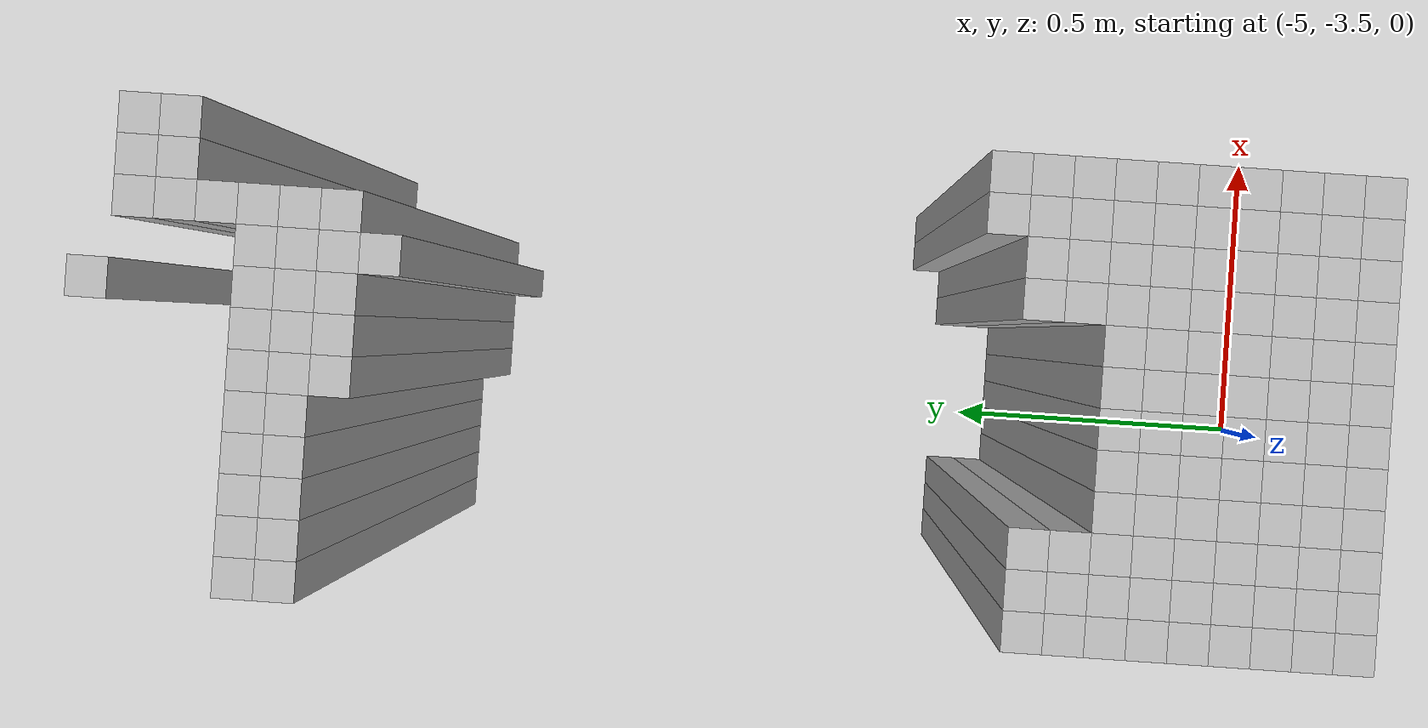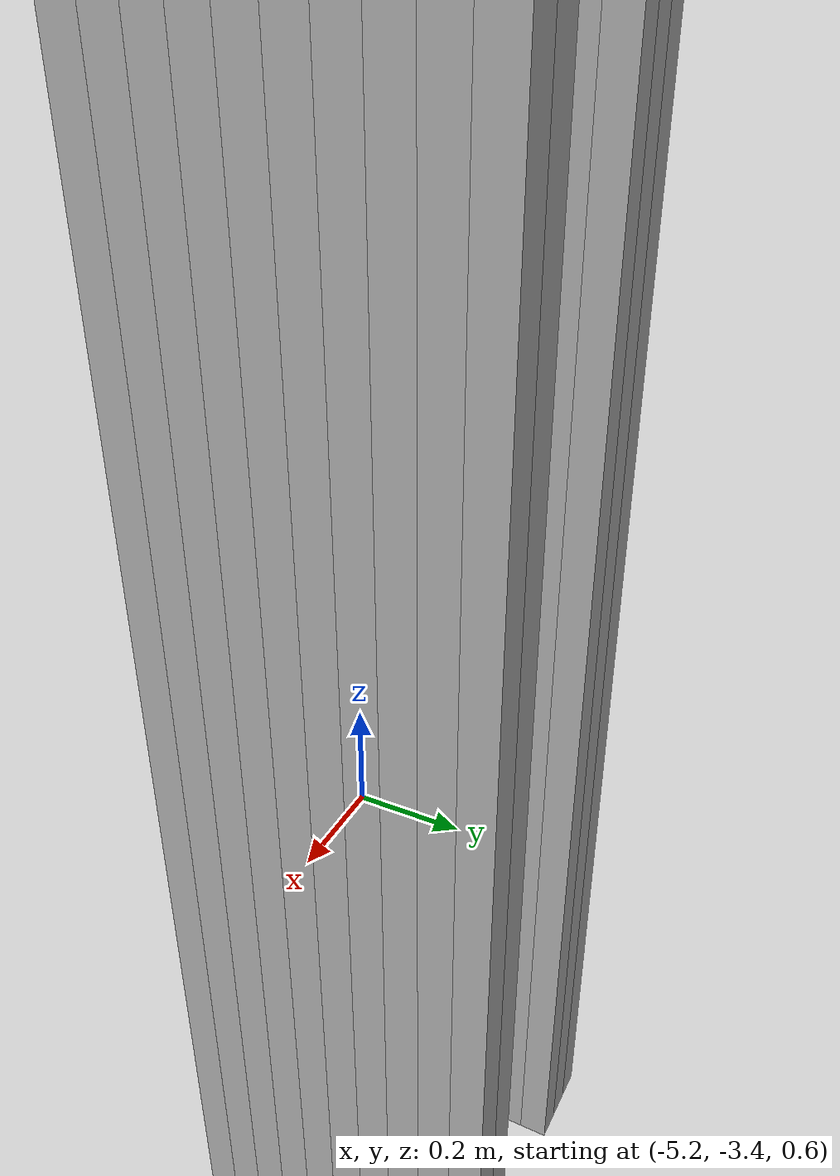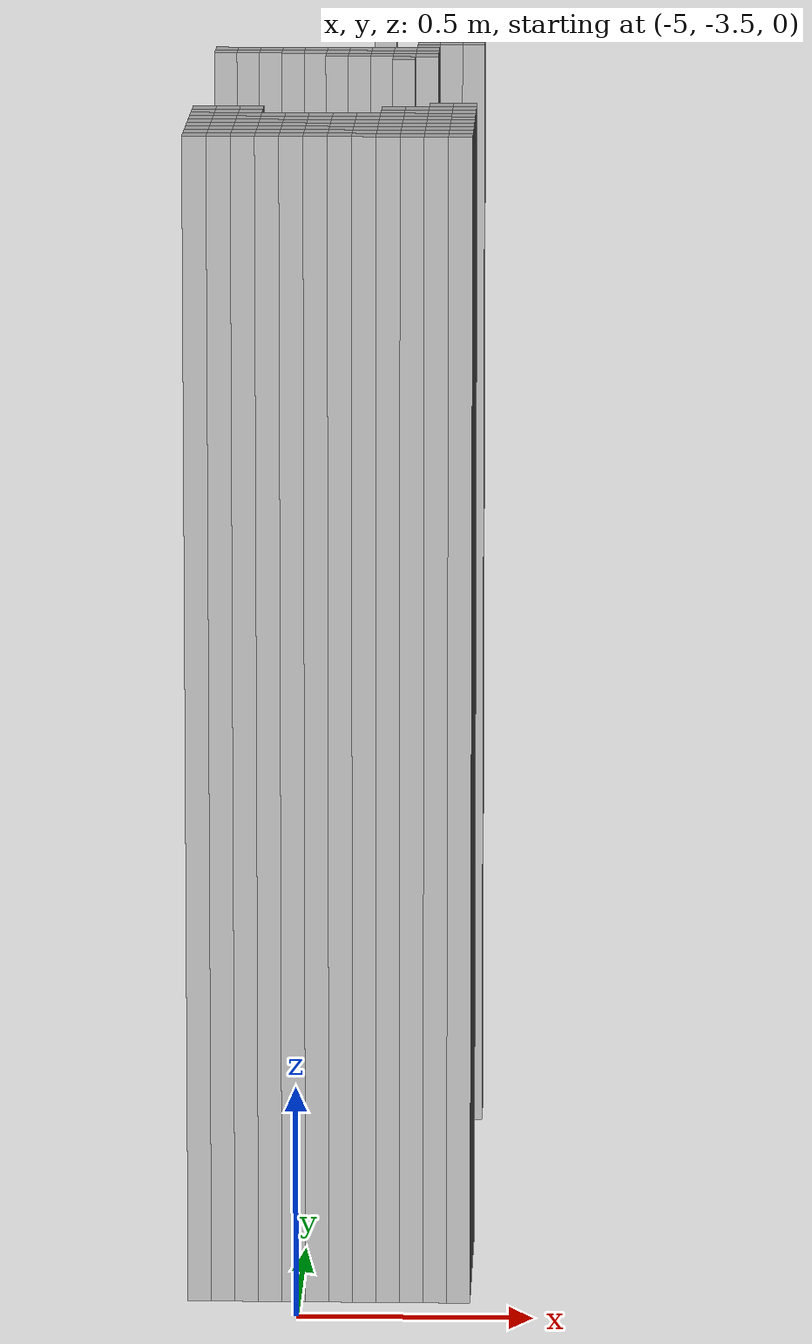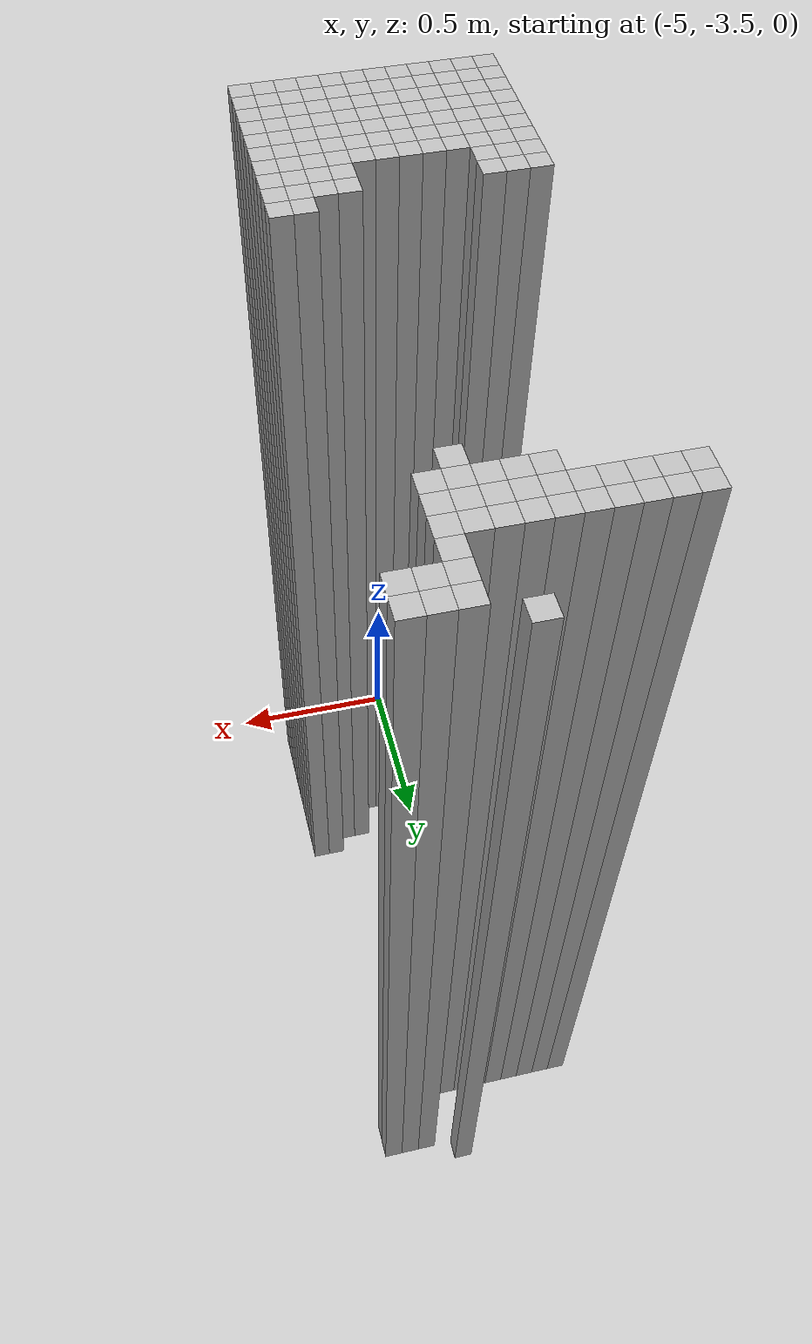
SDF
<sdf version="1.9">
 <world name="map_world">
  <model name="wall_126_190">
   <static>true</static>
   <pose>-4.861 -1.820 1.250 0 0 0</pose>
   <link name="link">
    <collision name="collision"><geometry><box><size>0.050 0.050 2.500</size></box></geometry></collision>
    <visual name="visual"><geometry><box><size>0.050 0.050 2.500</size></box></geometry></visual>
   </link>
  </model>
  <model name="wall_128_191">
   <static>true</static>
   <pose>-4.761 -1.870 1.250 0 0 0</pose>
   <link name="link">
    <collision name="collision"><geometry><box><size>0.050 0.050 2.500</size></box></geometry></collision>
    <visual name="visual"><geometry><box><size>0.050 0.050 2.500</size></box></geometry></visual>
   </link>
  </model>
  <model name="wall_129_191">
   <static>true</static>
   <pose>-4.711 -1.870 1.250 0 0 0</pose>
   <link name="link">
    <collision name="collision"><geometry><box><size>0.050 0.050 2.500</size></box></geometry></collision>
    <visual name="visual"><geometry><box><size>0.050 0.050 2.500</size></box></geometry></visual>
   </link>
  </model>
  <model name="wall_130_191">
   <static>true</static>
   <pose>-4.661 -1.870 1.250 0 0 0</pose>
   <link name="link">
    <collision name="collision"><geometry><box><size>0.050 0.050 2.500</size></box></geometry></collision>
    <visual name="visual"><geometry><box><size>0.050 0.050 2.500</size></box></geometry></visual>
   </link>
  </model>
  <model name="wall_128_192">
   <static>true</static>
   <pose>-4.761 -1.920 1.250 0 0 0</pose>
   <link name="link">
    <collision name="collision"><geometry><box><size>0.050 0.050 2.500</size></box></geometry></collision>
    <visual name="visual"><geometry><box><size>0.050 0.050 2.500</size></box></geometry></visual>
   </link>
  </model>
  <model name="wall_129_192">
   <static>true</static>
   <pose>-4.711 -1.920 1.250 0 0 0</pose>
   <link name="link">
    <collision name="collision"><geometry><box><size>0.050 0.050 2.500</size></box></geometry></collision>
    <visual name="visual"><geometry><box><size>0.050 0.050 2.500</size></box></geometry></visual>
   </link>
  </model>
  <model name="wall_130_192">
   <static>true</static>
   <pose>-4.661 -1.920 1.250 0 0 0</pose>
   <link name="link">
    <collision name="collision"><geometry><box><size>0.050 0.050 2.500</size></box></geometry></collision>
    <visual name="visual"><geometry><box><size>0.050 0.050 2.500</size></box></geometry></visual>
   </link>
  </model>
  <model name="wall_128_193">
   <static>true</static>
   <pose>-4.761 -1.970 1.250 0 0 0</pose>
   <link name="link">
    <collision name="collision"><geometry><box><size>0.050 0.050 2.500</size></box></geometry></collision>
    <visual name="visual"><geometry><box><size>0.050 0.050 2.500</size></box></geometry></visual>
   </link>
  </model>
  <model name="wall_119_194">
   <static>true</static>
   <pose>-5.211 -2.020 1.250 0 0 0</pose>
   <link name="link">
    <collision name="collision"><geometry><box><size>0.050 0.050 2.500</size></box></geometry></collision>
    <visual name="visual"><geometry><box><size>0.050 0.050 2.500</size></box></geometry></visual>
   </link>
  </model>
  <model name="wall_120_194">
   <static>true</static>
   <pose>-5.161 -2.020 1.250 0 0 0</pose>
   <link name="link">
    <collision name="collision"><geometry><box><size>0.050 0.050 2.500</size></box></geometry></collision>
    <visual name="visual"><geometry><box><size>0.050 0.050 2.500</size></box></geometry></visual>
   </link>
  </model>
  <model name="wall_121_194">
   <static>true</static>
   <pose>-5.111 -2.020 1.250 0 0 0</pose>
   <link name="link">
    <collision name="collision"><geometry><box><size>0.050 0.050 2.500</size></box></geometry></collision>
    <visual name="visual"><geometry><box><size>0.050 0.050 2.500</size></box></geometry></visual>
   </link>
  </model>
  <model name="wall_122_194">
   <static>true</static>
   <pose>-5.061 -2.020 1.250 0 0 0</pose>
   <link name="link">
    <collision name="collision"><geometry><box><size>0.050 0.050 2.500</size></box></geometry></collision>
    <visual name="visual"><geometry><box><size>0.050 0.050 2.500</size></box></geometry></visual>
   </link>
  </model>
  <model name="wall_123_194">
   <static>true</static>
   <pose>-5.011 -2.020 1.250 0 0 0</pose>
   <link name="link">
    <collision name="collision"><geometry><box><size>0.050 0.050 2.500</size></box></geometry></collision>
    <visual name="visual"><geometry><box><size>0.050 0.050 2.500</size></box></geometry></visual>
   </link>
  </model>
  <model name="wall_124_194">
   <static>true</static>
   <pose>-4.961 -2.020 1.250 0 0 0</pose>
   <link name="link">
    <collision name="collision"><geometry><box><size>0.050 0.050 2.500</size></box></geometry></collision>
    <visual name="visual"><geometry><box><size>0.050 0.050 2.500</size></box></geometry></visual>
   </link>
  </model>
  <model name="wall_125_194">
   <static>true</static>
   <pose>-4.911 -2.020 1.250 0 0 0</pose>
   <link name="link">
    <collision name="collision"><geometry><box><size>0.050 0.050 2.500</size></box></geometry></collision>
    <visual name="visual"><geometry><box><size>0.050 0.050 2.500</size></box></geometry></visual>
   </link>
  </model>
  <model name="wall_126_194">
   <static>true</static>
   <pose>-4.861 -2.020 1.250 0 0 0</pose>
   <link name="link">
    <collision name="collision"><geometry><box><size>0.050 0.050 2.500</size></box></geometry></collision>
    <visual name="visual"><geometry><box><size>0.050 0.050 2.500</size></box></geometry></visual>
   </link>
  </model>
  <model name="wall_127_194">
   <static>true</static>
   <pose>-4.811 -2.020 1.250 0 0 0</pose>
   <link name="link">
    <collision name="collision"><geometry><box><size>0.050 0.050 2.500</size></box></geometry></collision>
    <visual name="visual"><geometry><box><size>0.050 0.050 2.500</size></box></geometry></visual>
   </link>
  </model>
  <model name="wall_128_194">
   <static>true</static>
   <pose>-4.761 -2.020 1.250 0 0 0</pose>
   <link name="link">
    <collision name="collision"><geometry><box><size>0.050 0.050 2.500</size></box></geometry></collision>
    <visual name="visual"><geometry><box><size>0.050 0.050 2.500</size></box></geometry></visual>
   </link>
  </model>
  <model name="wall_119_195">
   <static>true</static>
   <pose>-5.211 -2.070 1.250 0 0 0</pose>
   <link name="link">
    <collision name="collision"><geometry><box><size>0.050 0.050 2.500</size></box></geometry></collision>
    <visual name="visual"><geometry><box><size>0.050 0.050 2.500</size></box></geometry></visual>
   </link>
  </model>
  <model name="wall_120_195">
   <static>true</static>
   <pose>-5.161 -2.070 1.250 0 0 0</pose>
   <link name="link">
    <collision name="collision"><geometry><box><size>0.050 0.050 2.500</size></box></geometry></collision>
    <visual name="visual"><geometry><box><size>0.050 0.050 2.500</size></box></geometry></visual>
   </link>
  </model>
  <model name="wall_121_195">
   <static>true</static>
   <pose>-5.111 -2.070 1.250 0 0 0</pose>
   <link name="link">
    <collision name="collision"><geometry><box><size>0.050 0.050 2.500</size></box></geometry></collision>
    <visual name="visual"><geometry><box><size>0.050 0.050 2.500</size></box></geometry></visual>
   </link>
  </model>
  <model name="wall_122_195">
   <static>true</static>
   <pose>-5.061 -2.070 1.250 0 0 0</pose>
   <link name="link">
    <collision name="collision"><geometry><box><size>0.050 0.050 2.500</size></box></geometry></collision>
    <visual name="visual"><geometry><box><size>0.050 0.050 2.500</size></box></geometry></visual>
   </link>
  </model>
  <model name="wall_123_195">
   <static>true</static>
   <pose>-5.011 -2.070 1.250 0 0 0</pose>
   <link name="link">
    <collision name="collision"><geometry><box><size>0.050 0.050 2.500</size></box></geometry></collision>
    <visual name="visual"><geometry><box><size>0.050 0.050 2.500</size></box></geometry></visual>
   </link>
  </model>
  <model name="wall_124_195">
   <static>true</static>
   <pose>-4.961 -2.070 1.250 0 0 0</pose>
   <link name="link">
    <collision name="collision"><geometry><box><size>0.050 0.050 2.500</size></box></geometry></collision>
    <visual name="visual"><geometry><box><size>0.050 0.050 2.500</size></box></geometry></visual>
   </link>
  </model>
  <model name="wall_125_195">
   <static>true</static>
   <pose>-4.911 -2.070 1.250 0 0 0</pose>
   <link name="link">
    <collision name="collision"><geometry><box><size>0.050 0.050 2.500</size></box></geometry></collision>
    <visual name="visual"><geometry><box><size>0.050 0.050 2.500</size></box></geometry></visual>
   </link>
  </model>
  <model name="wall_126_195">
   <static>true</static>
   <pose>-4.861 -2.070 1.250 0 0 0</pose>
   <link name="link">
    <collision name="collision"><geometry><box><size>0.050 0.050 2.500</size></box></geometry></collision>
    <visual name="visual"><geometry><box><size>0.050 0.050 2.500</size></box></geometry></visual>
   </link>
  </model>
  <model name="wall_127_195">
   <static>true</static>
   <pose>-4.811 -2.070 1.250 0 0 0</pose>
   <link name="link">
    <collision name="collision"><geometry><box><size>0.050 0.050 2.500</size></box></geometry></collision>
    <visual name="visual"><geometry><box><size>0.050 0.050 2.500</size></box></geometry></visual>
   </link>
  </model>
  <model name="wall_128_195">
   <static>true</static>
   <pose>-4.761 -2.070 1.250 0 0 0</pose>
   <link name="link">
    <collision name="collision"><geometry><box><size>0.050 0.050 2.500</size></box></geometry></collision>
    <visual name="visual"><geometry><box><size>0.050 0.050 2.500</size></box></geometry></visual>
   </link>
  </model>
  <model name="wall_124_196">
   <static>true</static>
   <pose>-4.961 -2.120 1.250 0 0 0</pose>
   <link name="link">
    <collision name="collision"><geometry><box><size>0.050 0.050 2.500</size></box></geometry></collision>
    <visual name="visual"><geometry><box><size>0.050 0.050 2.500</size></box></geometry></visual>
   </link>
  </model>
  <model name="wall_125_196">
   <static>true</static>
   <pose>-4.911 -2.120 1.250 0 0 0</pose>
   <link name="link">
    <collision name="collision"><geometry><box><size>0.050 0.050 2.500</size></box></geometry></collision>
    <visual name="visual"><geometry><box><size>0.050 0.050 2.500</size></box></geometry></visual>
   </link>
  </model>
  <model name="wall_126_196">
   <static>true</static>
   <pose>-4.861 -2.120 1.250 0 0 0</pose>
   <link name="link">
    <collision name="collision"><geometry><box><size>0.050 0.050 2.500</size></box></geometry></collision>
    <visual name="visual"><geometry><box><size>0.050 0.050 2.500</size></box></geometry></visual>
   </link>
  </model>
  <model name="wall_127_196">
   <static>true</static>
   <pose>-4.811 -2.120 1.250 0 0 0</pose>
   <link name="link">
    <collision name="collision"><geometry><box><size>0.050 0.050 2.500</size></box></geometry></collision>
    <visual name="visual"><geometry><box><size>0.050 0.050 2.500</size></box></geometry></visual>
   </link>
  </model>
  <model name="wall_128_196">
   <static>true</static>
   <pose>-4.761 -2.120 1.250 0 0 0</pose>
   <link name="link">
    <collision name="collision"><geometry><box><size>0.050 0.050 2.500</size></box></geometry></collision>
    <visual name="visual"><geometry><box><size>0.050 0.050 2.500</size></box></geometry></visual>
   </link>
  </model>
  <model name="wall_127_197">
   <static>true</static>
   <pose>-4.811 -2.170 1.250 0 0 0</pose>
   <link name="link">
    <collision name="collision"><geometry><box><size>0.050 0.050 2.500</size></box></geometry></collision>
    <visual name="visual"><geometry><box><size>0.050 0.050 2.500</size></box></geometry></visual>
   </link>
  </model>
  <model name="wall_129_212">
   <static>true</static>
   <pose>-4.711 -2.920 1.250 0 0 0</pose>
   <link name="link">
    <collision name="collision"><geometry><box><size>0.050 0.050 2.500</size></box></geometry></collision>
    <visual name="visual"><geometry><box><size>0.050 0.050 2.500</size></box></geometry></visual>
   </link>
  </model>
  <model name="wall_130_212">
   <static>true</static>
   <pose>-4.661 -2.920 1.250 0 0 0</pose>
   <link name="link">
    <collision name="collision"><geometry><box><size>0.050 0.050 2.500</size></box></geometry></collision>
    <visual name="visual"><geometry><box><size>0.050 0.050 2.500</size></box></geometry></visual>
   </link>
  </model>
  <model name="wall_119_213">
   <static>true</static>
   <pose>-5.211 -2.970 1.250 0 0 0</pose>
   <link name="link">
    <collision name="collision"><geometry><box><size>0.050 0.050 2.500</size></box></geometry></collision>
    <visual name="visual"><geometry><box><size>0.050 0.050 2.500</size></box></geometry></visual>
   </link>
  </model>
  <model name="wall_120_213">
   <static>true</static>
   <pose>-5.161 -2.970 1.250 0 0 0</pose>
   <link name="link">
    <collision name="collision"><geometry><box><size>0.050 0.050 2.500</size></box></geometry></collision>
    <visual name="visual"><geometry><box><size>0.050 0.050 2.500</size></box></geometry></visual>
   </link>
  </model>
  <model name="wall_121_213">
   <static>true</static>
   <pose>-5.111 -2.970 1.250 0 0 0</pose>
   <link name="link">
    <collision name="collision"><geometry><box><size>0.050 0.050 2.500</size></box></geometry></collision>
    <visual name="visual"><geometry><box><size>0.050 0.050 2.500</size></box></geometry></visual>
   </link>
  </model>
  <model name="wall_127_213">
   <static>true</static>
   <pose>-4.811 -2.970 1.250 0 0 0</pose>
   <link name="link">
    <collision name="collision"><geometry><box><size>0.050 0.050 2.500</size></box></geometry></collision>
    <visual name="visual"><geometry><box><size>0.050 0.050 2.500</size></box></geometry></visual>
   </link>
  </model>
  <model name="wall_128_213">
   <static>true</static>
   <pose>-4.761 -2.970 1.250 0 0 0</pose>
   <link name="link">
    <collision name="collision"><geometry><box><size>0.050 0.050 2.500</size></box></geometry></collision>
    <visual name="visual"><geometry><box><size>0.050 0.050 2.500</size></box></geometry></visual>
   </link>
  </model>
  <model name="wall_129_213">
   <static>true</static>
   <pose>-4.711 -2.970 1.250 0 0 0</pose>
   <link name="link">
    <collision name="collision"><geometry><box><size>0.050 0.050 2.500</size></box></geometry></collision>
    <visual name="visual"><geometry><box><size>0.050 0.050 2.500</size></box></geometry></visual>
   </link>
  </model>
  <model name="wall_130_213">
   <static>true</static>
   <pose>-4.661 -2.970 1.250 0 0 0</pose>
   <link name="link">
    <collision name="collision"><geometry><box><size>0.050 0.050 2.500</size></box></geometry></collision>
    <visual name="visual"><geometry><box><size>0.050 0.050 2.500</size></box></geometry></visual>
   </link>
  </model>
  <model name="wall_119_214">
   <static>true</static>
   <pose>-5.211 -3.020 1.250 0 0 0</pose>
   <link name="link">
    <collision name="collision"><geometry><box><size>0.050 0.050 2.500</size></box></geometry></collision>
    <visual name="visual"><geometry><box><size>0.050 0.050 2.500</size></box></geometry></visual>
   </link>
  </model>
  <model name="wall_120_214">
   <static>true</static>
   <pose>-5.161 -3.020 1.250 0 0 0</pose>
   <link name="link">
    <collision name="collision"><geometry><box><size>0.050 0.050 2.500</size></box></geometry></collision>
    <visual name="visual"><geometry><box><size>0.050 0.050 2.500</size></box></geometry></visual>
   </link>
  </model>
  <model name="wall_121_214">
   <static>true</static>
   <pose>-5.111 -3.020 1.250 0 0 0</pose>
   <link name="link">
    <collision name="collision"><geometry><box><size>0.050 0.050 2.500</size></box></geometry></collision>
    <visual name="visual"><geometry><box><size>0.050 0.050 2.500</size></box></geometry></visual>
   </link>
  </model>
  <model name="wall_127_214">
   <static>true</static>
   <pose>-4.811 -3.020 1.250 0 0 0</pose>
   <link name="link">
    <collision name="collision"><geometry><box><size>0.050 0.050 2.500</size></box></geometry></collision>
    <visual name="visual"><geometry><box><size>0.050 0.050 2.500</size></box></geometry></visual>
   </link>
  </model>
  <model name="wall_128_214">
   <static>true</static>
   <pose>-4.761 -3.020 1.250 0 0 0</pose>
   <link name="link">
    <collision name="collision"><geometry><box><size>0.050 0.050 2.500</size></box></geometry></collision>
    <visual name="visual"><geometry><box><size>0.050 0.050 2.500</size></box></geometry></visual>
   </link>
  </model>
  <model name="wall_129_214">
   <static>true</static>
   <pose>-4.711 -3.020 1.250 0 0 0</pose>
   <link name="link">
    <collision name="collision"><geometry><box><size>0.050 0.050 2.500</size></box></geometry></collision>
    <visual name="visual"><geometry><box><size>0.050 0.050 2.500</size></box></geometry></visual>
   </link>
  </model>
  <model name="wall_130_214">
   <static>true</static>
   <pose>-4.661 -3.020 1.250 0 0 0</pose>
   <link name="link">
    <collision name="collision"><geometry><box><size>0.050 0.050 2.500</size></box></geometry></collision>
    <visual name="visual"><geometry><box><size>0.050 0.050 2.500</size></box></geometry></visual>
   </link>
  </model>
  <model name="wall_119_215">
   <static>true</static>
   <pose>-5.211 -3.070 1.250 0 0 0</pose>
   <link name="link">
    <collision name="collision"><geometry><box><size>0.050 0.050 2.500</size></box></geometry></collision>
    <visual name="visual"><geometry><box><size>0.050 0.050 2.500</size></box></geometry></visual>
   </link>
  </model>
  <model name="wall_120_215">
   <static>true</static>
   <pose>-5.161 -3.070 1.250 0 0 0</pose>
   <link name="link">
    <collision name="collision"><geometry><box><size>0.050 0.050 2.500</size></box></geometry></collision>
    <visual name="visual"><geometry><box><size>0.050 0.050 2.500</size></box></geometry></visual>
   </link>
  </model>
  <model name="wall_121_215">
   <static>true</static>
   <pose>-5.111 -3.070 1.250 0 0 0</pose>
   <link name="link">
    <collision name="collision"><geometry><box><size>0.050 0.050 2.500</size></box></geometry></collision>
    <visual name="visual"><geometry><box><size>0.050 0.050 2.500</size></box></geometry></visual>
   </link>
  </model>
  <model name="wall_122_215">
   <static>true</static>
   <pose>-5.061 -3.070 1.250 0 0 0</pose>
   <link name="link">
    <collision name="collision"><geometry><box><size>0.050 0.050 2.500</size></box></geometry></collision>
    <visual name="visual"><geometry><box><size>0.050 0.050 2.500</size></box></geometry></visual>
   </link>
  </model>
  <model name="wall_123_215">
   <static>true</static>
   <pose>-5.011 -3.070 1.250 0 0 0</pose>
   <link name="link">
    <collision name="collision"><geometry><box><size>0.050 0.050 2.500</size></box></geometry></collision>
    <visual name="visual"><geometry><box><size>0.050 0.050 2.500</size></box></geometry></visual>
   </link>
  </model>
  <model name="wall_124_215">
   <static>true</static>
   <pose>-4.961 -3.070 1.250 0 0 0</pose>
   <link name="link">
    <collision name="collision"><geometry><box><size>0.050 0.050 2.500</size></box></geometry></collision>
    <visual name="visual"><geometry><box><size>0.050 0.050 2.500</size></box></geometry></visual>
   </link>
  </model>
  <model name="wall_125_215">
   <static>true</static>
   <pose>-4.911 -3.070 1.250 0 0 0</pose>
   <link name="link">
    <collision name="collision"><geometry><box><size>0.050 0.050 2.500</size></box></geometry></collision>
    <visual name="visual"><geometry><box><size>0.050 0.050 2.500</size></box></geometry></visual>
   </link>
  </model>
  <model name="wall_126_215">
   <static>true</static>
   <pose>-4.861 -3.070 1.250 0 0 0</pose>
   <link name="link">
    <collision name="collision"><geometry><box><size>0.050 0.050 2.500</size></box></geometry></collision>
    <visual name="visual"><geometry><box><size>0.050 0.050 2.500</size></box></geometry></visual>
   </link>
  </model>
  <model name="wall_127_215">
   <static>true</static>
   <pose>-4.811 -3.070 1.250 0 0 0</pose>
   <link name="link">
    <collision name="collision"><geometry><box><size>0.050 0.050 2.500</size></box></geometry></collision>
    <visual name="visual"><geometry><box><size>0.050 0.050 2.500</size></box></geometry></visual>
   </link>
  </model>
  <model name="wall_128_215">
   <static>true</static>
   <pose>-4.761 -3.070 1.250 0 0 0</pose>
   <link name="link">
    <collision name="collision"><geometry><box><size>0.050 0.050 2.500</size></box></geometry></collision>
    <visual name="visual"><geometry><box><size>0.050 0.050 2.500</size></box></geometry></visual>
   </link>
  </model>
  <model name="wall_129_215">
   <static>true</static>
   <pose>-4.711 -3.070 1.250 0 0 0</pose>
   <link name="link">
    <collision name="collision"><geometry><box><size>0.050 0.050 2.500</size></box></geometry></collision>
    <visual name="visual"><geometry><box><size>0.050 0.050 2.500</size></box></geometry></visual>
   </link>
  </model>
  <model name="wall_130_215">
   <static>true</static>
   <pose>-4.661 -3.070 1.250 0 0 0</pose>
   <link name="link">
    <collision name="collision"><geometry><box><size>0.050 0.050 2.500</size></box></geometry></collision>
    <visual name="visual"><geometry><box><size>0.050 0.050 2.500</size></box></geometry></visual>
   </link>
  </model>
  <model name="wall_119_216">
   <static>true</static>
   <pose>-5.211 -3.120 1.250 0 0 0</pose>
   <link name="link">
    <collision name="collision"><geometry><box><size>0.050 0.050 2.500</size></box></geometry></collision>
    <visual name="visual"><geometry><box><size>0.050 0.050 2.500</size></box></geometry></visual>
   </link>
  </model>
  <model name="wall_120_216">
   <static>true</static>
   <pose>-5.161 -3.120 1.250 0 0 0</pose>
   <link name="link">
    <collision name="collision"><geometry><box><size>0.050 0.050 2.500</size></box></geometry></collision>
    <visual name="visual"><geometry><box><size>0.050 0.050 2.500</size></box></geometry></visual>
   </link>
  </model>
  <model name="wall_121_216">
   <static>true</static>
   <pose>-5.111 -3.120 1.250 0 0 0</pose>
   <link name="link">
    <collision name="collision"><geometry><box><size>0.050 0.050 2.500</size></box></geometry></collision>
    <visual name="visual"><geometry><box><size>0.050 0.050 2.500</size></box></geometry></visual>
   </link>
  </model>
  <model name="wall_122_216">
   <static>true</static>
   <pose>-5.061 -3.120 1.250 0 0 0</pose>
   <link name="link">
    <collision name="collision"><geometry><box><size>0.050 0.050 2.500</size></box></geometry></collision>
    <visual name="visual"><geometry><box><size>0.050 0.050 2.500</size></box></geometry></visual>
   </link>
  </model>
  <model name="wall_123_216">
   <static>true</static>
   <pose>-5.011 -3.120 1.250 0 0 0</pose>
   <link name="link">
    <collision name="collision"><geometry><box><size>0.050 0.050 2.500</size></box></geometry></collision>
    <visual name="visual"><geometry><box><size>0.050 0.050 2.500</size></box></geometry></visual>
   </link>
  </model>
  <model name="wall_124_216">
   <static>true</static>
   <pose>-4.961 -3.120 1.250 0 0 0</pose>
   <link name="link">
    <collision name="collision"><geometry><box><size>0.050 0.050 2.500</size></box></geometry></collision>
    <visual name="visual"><geometry><box><size>0.050 0.050 2.500</size></box></geometry></visual>
   </link>
  </model>
  <model name="wall_125_216">
   <static>true</static>
   <pose>-4.911 -3.120 1.250 0 0 0</pose>
   <link name="link">
    <collision name="collision"><geometry><box><size>0.050 0.050 2.500</size></box></geometry></collision>
    <visual name="visual"><geometry><box><size>0.050 0.050 2.500</size></box></geometry></visual>
   </link>
  </model>
  <model name="wall_126_216">
   <static>true</static>
   <pose>-4.861 -3.120 1.250 0 0 0</pose>
   <link name="link">
    <collision name="collision"><geometry><box><size>0.050 0.050 2.500</size></box></geometry></collision>
    <visual name="visual"><geometry><box><size>0.050 0.050 2.500</size></box></geometry></visual>
   </link>
  </model>
  <model name="wall_127_216">
   <static>true</static>
   <pose>-4.811 -3.120 1.250 0 0 0</pose>
   <link name="link">
    <collision name="collision"><geometry><box><size>0.050 0.050 2.500</size></box></geometry></collision>
    <visual name="visual"><geometry><box><size>0.050 0.050 2.500</size></box></geometry></visual>
   </link>
  </model>
  <model name="wall_128_216">
   <static>true</static>
   <pose>-4.761 -3.120 1.250 0 0 0</pose>
   <link name="link">
    <collision name="collision"><geometry><box><size>0.050 0.050 2.500</size></box></geometry></collision>
    <visual name="visual"><geometry><box><size>0.050 0.050 2.500</size></box></geometry></visual>
   </link>
  </model>
  <model name="wall_129_216">
   <static>true</static>
   <pose>-4.711 -3.120 1.250 0 0 0</pose>
   <link name="link">
    <collision name="collision"><geometry><box><size>0.050 0.050 2.500</size></box></geometry></collision>
    <visual name="visual"><geometry><box><size>0.050 0.050 2.500</size></box></geometry></visual>
   </link>
  </model>
  <model name="wall_130_216">
   <static>true</static>
   <pose>-4.661 -3.120 1.250 0 0 0</pose>
   <link name="link">
    <collision name="collision"><geometry><box><size>0.050 0.050 2.500</size></box></geometry></collision>
    <visual name="visual"><geometry><box><size>0.050 0.050 2.500</size></box></geometry></visual>
   </link>
  </model>
  <model name="wall_119_217">
   <static>true</static>
   <pose>-5.211 -3.170 1.250 0 0 0</pose>
   <link name="link">
    <collision name="collision"><geometry><box><size>0.050 0.050 2.500</size></box></geometry></collision>
    <visual name="visual"><geometry><box><size>0.050 0.050 2.500</size></box></geometry></visual>
   </link>
  </model>
  <model name="wall_120_217">
   <static>true</static>
   <pose>-5.161 -3.170 1.250 0 0 0</pose>
   <link name="link">
    <collision name="collision"><geometry><box><size>0.050 0.050 2.500</size></box></geometry></collision>
    <visual name="visual"><geometry><box><size>0.050 0.050 2.500</size></box></geometry></visual>
   </link>
  </model>
  <model name="wall_121_217">
   <static>true</static>
   <pose>-5.111 -3.170 1.250 0 0 0</pose>
   <link name="link">
    <collision name="collision"><geometry><box><size>0.050 0.050 2.500</size></box></geometry></collision>
    <visual name="visual"><geometry><box><size>0.050 0.050 2.500</size></box></geometry></visual>
   </link>
  </model>
  <model name="wall_122_217">
   <static>true</static>
   <pose>-5.061 -3.170 1.250 0 0 0</pose>
   <link name="link">
    <collision name="collision"><geometry><box><size>0.050 0.050 2.500</size></box></geometry></collision>
    <visual name="visual"><geometry><box><size>0.050 0.050 2.500</size></box></geometry></visual>
   </link>
  </model>
  <model name="wall_123_217">
   <static>true</static>
   <pose>-5.011 -3.170 1.250 0 0 0</pose>
   <link name="link">
    <collision name="collision"><geometry><box><size>0.050 0.050 2.500</size></box></geometry></collision>
    <visual name="visual"><geometry><box><size>0.050 0.050 2.500</size></box></geometry></visual>
   </link>
  </model>
  <model name="wall_124_217">
   <static>true</static>
   <pose>-4.961 -3.170 1.250 0 0 0</pose>
   <link name="link">
    <collision name="collision"><geometry><box><size>0.050 0.050 2.500</size></box></geometry></collision>
    <visual name="visual"><geometry><box><size>0.050 0.050 2.500</size></box></geometry></visual>
   </link>
  </model>
  <model name="wall_125_217">
   <static>true</static>
   <pose>-4.911 -3.170 1.250 0 0 0</pose>
   <link name="link">
    <collision name="collision"><geometry><box><size>0.050 0.050 2.500</size></box></geometry></collision>
    <visual name="visual"><geometry><box><size>0.050 0.050 2.500</size></box></geometry></visual>
   </link>
  </model>
  <model name="wall_126_217">
   <static>true</static>
   <pose>-4.861 -3.170 1.250 0 0 0</pose>
   <link name="link">
    <collision name="collision"><geometry><box><size>0.050 0.050 2.500</size></box></geometry></collision>
    <visual name="visual"><geometry><box><size>0.050 0.050 2.500</size></box></geometry></visual>
   </link>
  </model>
  <model name="wall_127_217">
   <static>true</static>
   <pose>-4.811 -3.170 1.250 0 0 0</pose>
   <link name="link">
    <collision name="collision"><geometry><box><size>0.050 0.050 2.500</size></box></geometry></collision>
    <visual name="visual"><geometry><box><size>0.050 0.050 2.500</size></box></geometry></visual>
   </link>
  </model>
  <model name="wall_128_217">
   <static>true</static>
   <pose>-4.761 -3.170 1.250 0 0 0</pose>
   <link name="link">
    <collision name="collision"><geometry><box><size>0.050 0.050 2.500</size></box></geometry></collision>
    <visual name="visual"><geometry><box><size>0.050 0.050 2.500</size></box></geometry></visual>
   </link>
  </model>
  <model name="wall_129_217">
   <static>true</static>
   <pose>-4.711 -3.170 1.250 0 0 0</pose>
   <link name="link">
    <collision name="collision"><geometry><box><size>0.050 0.050 2.500</size></box></geometry></collision>
    <visual name="visual"><geometry><box><size>0.050 0.050 2.500</size></box></geometry></visual>
   </link>
  </model>
  <model name="wall_130_217">
   <static>true</static>
   <pose>-4.661 -3.170 1.250 0 0 0</pose>
   <link name="link">
    <collision name="collision"><geometry><box><size>0.050 0.050 2.500</size></box></geometry></collision>
    <visual name="visual"><geometry><box><size>0.050 0.050 2.500</size></box></geometry></visual>
   </link>
  </model>
  <model name="wall_119_218">
   <static>true</static>
   <pose>-5.211 -3.220 1.250 0 0 0</pose>
   <link name="link">
    <collision name="collision"><geometry><box><size>0.050 0.050 2.500</size></box></geometry></collision>
    <visual name="visual"><geometry><box><size>0.050 0.050 2.500</size></box></geometry></visual>
   </link>
  </model>
  <model name="wall_120_218">
   <static>true</static>
   <pose>-5.161 -3.220 1.250 0 0 0</pose>
   <link name="link">
    <collision name="collision"><geometry><box><size>0.050 0.050 2.500</size></box></geometry></collision>
    <visual name="visual"><geometry><box><size>0.050 0.050 2.500</size></box></geometry></visual>
   </link>
  </model>
  <model name="wall_121_218">
   <static>true</static>
   <pose>-5.111 -3.220 1.250 0 0 0</pose>
   <link name="link">
    <collision name="collision"><geometry><box><size>0.050 0.050 2.500</size></box></geometry></collision>
    <visual name="visual"><geometry><box><size>0.050 0.050 2.500</size></box></geometry></visual>
   </link>
  </model>
  <model name="wall_122_218">
   <static>true</static>
   <pose>-5.061 -3.220 1.250 0 0 0</pose>
   <link name="link">
    <collision name="collision"><geometry><box><size>0.050 0.050 2.500</size></box></geometry></collision>
    <visual name="visual"><geometry><box><size>0.050 0.050 2.500</size></box></geometry></visual>
   </link>
  </model>
  <model name="wall_123_218">
   <static>true</static>
   <pose>-5.011 -3.220 1.250 0 0 0</pose>
   <link name="link">
    <collision name="collision"><geometry><box><size>0.050 0.050 2.500</size></box></geometry></collision>
    <visual name="visual"><geometry><box><size>0.050 0.050 2.500</size></box></geometry></visual>
   </link>
  </model>
  <model name="wall_124_218">
   <static>true</static>
   <pose>-4.961 -3.220 1.250 0 0 0</pose>
   <link name="link">
    <collision name="collision"><geometry><box><size>0.050 0.050 2.500</size></box></geometry></collision>
    <visual name="visual"><geometry><box><size>0.050 0.050 2.500</size></box></geometry></visual>
   </link>
  </model>
  <model name="wall_125_218">
   <static>true</static>
   <pose>-4.911 -3.220 1.250 0 0 0</pose>
   <link name="link">
    <collision name="collision"><geometry><box><size>0.050 0.050 2.500</size></box></geometry></collision>
    <visual name="visual"><geometry><box><size>0.050 0.050 2.500</size></box></geometry></visual>
   </link>
  </model>
  <model name="wall_126_218">
   <static>true</static>
   <pose>-4.861 -3.220 1.250 0 0 0</pose>
   <link name="link">
    <collision name="collision"><geometry><box><size>0.050 0.050 2.500</size></box></geometry></collision>
    <visual name="visual"><geometry><box><size>0.050 0.050 2.500</size></box></geometry></visual>
   </link>
  </model>
  <model name="wall_127_218">
   <static>true</static>
   <pose>-4.811 -3.220 1.250 0 0 0</pose>
   <link name="link">
    <collision name="collision"><geometry><box><size>0.050 0.050 2.500</size></box></geometry></collision>
    <visual name="visual"><geometry><box><size>0.050 0.050 2.500</size></box></geometry></visual>
   </link>
  </model>
  <model name="wall_128_218">
   <static>true</static>
   <pose>-4.761 -3.220 1.250 0 0 0</pose>
   <link name="link">
    <collision name="collision"><geometry><box><size>0.050 0.050 2.500</size></box></geometry></collision>
    <visual name="visual"><geometry><box><size>0.050 0.050 2.500</size></box></geometry></visual>
   </link>
  </model>
  <model name="wall_129_218">
   <static>true</static>
   <pose>-4.711 -3.220 1.250 0 0 0</pose>
   <link name="link">
    <collision name="collision"><geometry><box><size>0.050 0.050 2.500</size></box></geometry></collision>
    <visual name="visual"><geometry><box><size>0.050 0.050 2.500</size></box></geometry></visual>
   </link>
  </model>
  <model name="wall_130_218">
   <static>true</static>
   <pose>-4.661 -3.220 1.250 0 0 0</pose>
   <link name="link">
    <collision name="collision"><geometry><box><size>0.050 0.050 2.500</size></box></geometry></collision>
    <visual name="visual"><geometry><box><size>0.050 0.050 2.500</size></box></geometry></visual>
   </link>
  </model>
  <model name="wall_119_219">
   <static>true</static>
   <pose>-5.211 -3.270 1.250 0 0 0</pose>
   <link name="link">
    <collision name="collision"><geometry><box><size>0.050 0.050 2.500</size></box></geometry></collision>
    <visual name="visual"><geometry><box><size>0.050 0.050 2.500</size></box></geometry></visual>
   </link>
  </model>
  <model name="wall_120_219">
   <static>true</static>
   <pose>-5.161 -3.270 1.250 0 0 0</pose>
   <link name="link">
    <collision name="collision"><geometry><box><size>0.050 0.050 2.500</size></box></geometry></collision>
    <visual name="visual"><geometry><box><size>0.050 0.050 2.500</size></box></geometry></visual>
   </link>
  </model>
  <model name="wall_121_219">
   <static>true</static>
   <pose>-5.111 -3.270 1.250 0 0 0</pose>
   <link name="link">
    <collision name="collision"><geometry><box><size>0.050 0.050 2.500</size></box></geometry></collision>
    <visual name="visual"><geometry><box><size>0.050 0.050 2.500</size></box></geometry></visual>
   </link>
  </model>
  <model name="wall_122_219">
   <static>true</static>
   <pose>-5.061 -3.270 1.250 0 0 0</pose>
   <link name="link">
    <collision name="collision"><geometry><box><size>0.050 0.050 2.500</size></box></geometry></collision>
    <visual name="visual"><geometry><box><size>0.050 0.050 2.500</size></box></geometry></visual>
   </link>
  </model>
  <model name="wall_123_219">
   <static>true</static>
   <pose>-5.011 -3.270 1.250 0 0 0</pose>
   <link name="link">
    <collision name="collision"><geometry><box><size>0.050 0.050 2.500</size></box></geometry></collision>
    <visual name="visual"><geometry><box><size>0.050 0.050 2.500</size></box></geometry></visual>
   </link>
  </model>
  <model name="wall_124_219">
   <static>true</static>
   <pose>-4.961 -3.270 1.250 0 0 0</pose>
   <link name="link">
    <collision name="collision"><geometry><box><size>0.050 0.050 2.500</size></box></geometry></collision>
    <visual name="visual"><geometry><box><size>0.050 0.050 2.500</size></box></geometry></visual>
   </link>
  </model>
  <model name="wall_125_219">
   <static>true</static>
   <pose>-4.911 -3.270 1.250 0 0 0</pose>
   <link name="link">
    <collision name="collision"><geometry><box><size>0.050 0.050 2.500</size></box></geometry></collision>
    <visual name="visual"><geometry><box><size>0.050 0.050 2.500</size></box></geometry></visual>
   </link>
  </model>
  <model name="wall_126_219">
   <static>true</static>
   <pose>-4.861 -3.270 1.250 0 0 0</pose>
   <link name="link">
    <collision name="collision"><geometry><box><size>0.050 0.050 2.500</size></box></geometry></collision>
    <visual name="visual"><geometry><box><size>0.050 0.050 2.500</size></box></geometry></visual>
   </link>
  </model>
  <model name="wall_127_219">
   <static>true</static>
   <pose>-4.811 -3.270 1.250 0 0 0</pose>
   <link name="link">
    <collision name="collision"><geometry><box><size>0.050 0.050 2.500</size></box></geometry></collision>
    <visual name="visual"><geometry><box><size>0.050 0.050 2.500</size></box></geometry></visual>
   </link>
  </model>
  <model name="wall_128_219">
   <static>true</static>
   <pose>-4.761 -3.270 1.250 0 0 0</pose>
   <link name="link">
    <collision name="collision"><geometry><box><size>0.050 0.050 2.500</size></box></geometry></collision>
    <visual name="visual"><geometry><box><size>0.050 0.050 2.500</size></box></geometry></visual>
   </link>
  </model>
  <model name="wall_129_219">
   <static>true</static>
   <pose>-4.711 -3.270 1.250 0 0 0</pose>
   <link name="link">
    <collision name="collision"><geometry><box><size>0.050 0.050 2.500</size></box></geometry></collision>
    <visual name="visual"><geometry><box><size>0.050 0.050 2.500</size></box></geometry></visual>
   </link>
  </model>
  <model name="wall_130_219">
   <static>true</static>
   <pose>-4.661 -3.270 1.250 0 0 0</pose>
   <link name="link">
    <collision name="collision"><geometry><box><size>0.050 0.050 2.500</size></box></geometry></collision>
    <visual name="visual"><geometry><box><size>0.050 0.050 2.500</size></box></geometry></visual>
   </link>
  </model>
  <model name="wall_119_220">
   <static>true</static>
   <pose>-5.211 -3.320 1.250 0 0 0</pose>
   <link name="link">
    <collision name="collision"><geometry><box><size>0.050 0.050 2.500</size></box></geometry></collision>
    <visual name="visual"><geometry><box><size>0.050 0.050 2.500</size></box></geometry></visual>
   </link>
  </model>
  <model name="wall_120_220">
   <static>true</static>
   <pose>-5.161 -3.320 1.250 0 0 0</pose>
   <link name="link">
    <collision name="collision"><geometry><box><size>0.050 0.050 2.500</size></box></geometry></collision>
    <visual name="visual"><geometry><box><size>0.050 0.050 2.500</size></box></geometry></visual>
   </link>
  </model>
  <model name="wall_121_220">
   <static>true</static>
   <pose>-5.111 -3.320 1.250 0 0 0</pose>
   <link name="link">
    <collision name="collision"><geometry><box><size>0.050 0.050 2.500</size></box></geometry></collision>
    <visual name="visual"><geometry><box><size>0.050 0.050 2.500</size></box></geometry></visual>
   </link>
  </model>
  <model name="wall_122_220">
   <static>true</static>
   <pose>-5.061 -3.320 1.250 0 0 0</pose>
   <link name="link">
    <collision name="collision"><geometry><box><size>0.050 0.050 2.500</size></box></geometry></collision>
    <visual name="visual"><geometry><box><size>0.050 0.050 2.500</size></box></geometry></visual>
   </link>
  </model>
  <model name="wall_123_220">
   <static>true</static>
   <pose>-5.011 -3.320 1.250 0 0 0</pose>
   <link name="link">
    <collision name="collision"><geometry><box><size>0.050 0.050 2.500</size></box></geometry></collision>
    <visual name="visual"><geometry><box><size>0.050 0.050 2.500</size></box></geometry></visual>
   </link>
  </model>
  <model name="wall_124_220">
   <static>true</static>
   <pose>-4.961 -3.320 1.250 0 0 0</pose>
   <link name="link">
    <collision name="collision"><geometry><box><size>0.050 0.050 2.500</size></box></geometry></collision>
    <visual name="visual"><geometry><box><size>0.050 0.050 2.500</size></box></geometry></visual>
   </link>
  </model>
  <model name="wall_125_220">
   <static>true</static>
   <pose>-4.911 -3.320 1.250 0 0 0</pose>
   <link name="link">
    <collision name="collision"><geometry><box><size>0.050 0.050 2.500</size></box></geometry></collision>
    <visual name="visual"><geometry><box><size>0.050 0.050 2.500</size></box></geometry></visual>
   </link>
  </model>
  <model name="wall_126_220">
   <static>true</static>
   <pose>-4.861 -3.320 1.250 0 0 0</pose>
   <link name="link">
    <collision name="collision"><geometry><box><size>0.050 0.050 2.500</size></box></geometry></collision>
    <visual name="visual"><geometry><box><size>0.050 0.050 2.500</size></box></geometry></visual>
   </link>
  </model>
  <model name="wall_127_220">
   <static>true</static>
   <pose>-4.811 -3.320 1.250 0 0 0</pose>
   <link name="link">
    <collision name="collision"><geometry><box><size>0.050 0.050 2.500</size></box></geometry></collision>
    <visual name="visual"><geometry><box><size>0.050 0.050 2.500</size></box></geometry></visual>
   </link>
  </model>
  <model name="wall_128_220">
   <static>true</static>
   <pose>-4.761 -3.320 1.250 0 0 0</pose>
   <link name="link">
    <collision name="collision"><geometry><box><size>0.050 0.050 2.500</size></box></geometry></collision>
    <visual name="visual"><geometry><box><size>0.050 0.050 2.500</size></box></geometry></visual>
   </link>
  </model>
  <model name="wall_129_220">
   <static>true</static>
   <pose>-4.711 -3.320 1.250 0 0 0</pose>
   <link name="link">
    <collision name="collision"><geometry><box><size>0.050 0.050 2.500</size></box></geometry></collision>
    <visual name="visual"><geometry><box><size>0.050 0.050 2.500</size></box></geometry></visual>
   </link>
  </model>
  <model name="wall_130_220">
   <static>true</static>
   <pose>-4.661 -3.320 1.250 0 0 0</pose>
   <link name="link">
    <collision name="collision"><geometry><box><size>0.050 0.050 2.500</size></box></geometry></collision>
    <visual name="visual"><geometry><box><size>0.050 0.050 2.500</size></box></geometry></visual>
   </link>
  </model>
  <model name="wall_119_221">
   <static>true</static>
   <pose>-5.211 -3.370 1.250 0 0 0</pose>
   <link name="link">
    <collision name="collision"><geometry><box><size>0.050 0.050 2.500</size></box></geometry></collision>
    <visual name="visual"><geometry><box><size>0.050 0.050 2.500</size></box></geometry></visual>
   </link>
  </model>
  <model name="wall_120_221">
   <static>true</static>
   <pose>-5.161 -3.370 1.250 0 0 0</pose>
   <link name="link">
    <collision name="collision"><geometry><box><size>0.050 0.050 2.500</size></box></geometry></collision>
    <visual name="visual"><geometry><box><size>0.050 0.050 2.500</size></box></geometry></visual>
   </link>
  </model>
  <model name="wall_121_221">
   <static>true</static>
   <pose>-5.111 -3.370 1.250 0 0 0</pose>
   <link name="link">
    <collision name="collision"><geometry><box><size>0.050 0.050 2.500</size></box></geometry></collision>
    <visual name="visual"><geometry><box><size>0.050 0.050 2.500</size></box></geometry></visual>
   </link>
  </model>
  <model name="wall_122_221">
   <static>true</static>
   <pose>-5.061 -3.370 1.250 0 0 0</pose>
   <link name="link">
    <collision name="collision"><geometry><box><size>0.050 0.050 2.500</size></box></geometry></collision>
    <visual name="visual"><geometry><box><size>0.050 0.050 2.500</size></box></geometry></visual>
   </link>
  </model>
  <model name="wall_123_221">
   <static>true</static>
   <pose>-5.011 -3.370 1.250 0 0 0</pose>
   <link name="link">
    <collision name="collision"><geometry><box><size>0.050 0.050 2.500</size></box></geometry></collision>
    <visual name="visual"><geometry><box><size>0.050 0.050 2.500</size></box></geometry></visual>
   </link>
  </model>
  <model name="wall_124_221">
   <static>true</static>
   <pose>-4.961 -3.370 1.250 0 0 0</pose>
   <link name="link">
    <collision name="collision"><geometry><box><size>0.050 0.050 2.500</size></box></geometry></collision>
    <visual name="visual"><geometry><box><size>0.050 0.050 2.500</size></box></geometry></visual>
   </link>
  </model>
  <model name="wall_125_221">
   <static>true</static>
   <pose>-4.911 -3.370 1.250 0 0 0</pose>
   <link name="link">
    <collision name="collision"><geometry><box><size>0.050 0.050 2.500</size></box></geometry></collision>
    <visual name="visual"><geometry><box><size>0.050 0.050 2.500</size></box></geometry></visual>
   </link>
  </model>
  <model name="wall_126_221">
   <static>true</static>
   <pose>-4.861 -3.370 1.250 0 0 0</pose>
   <link name="link">
    <collision name="collision"><geometry><box><size>0.050 0.050 2.500</size></box></geometry></collision>
    <visual name="visual"><geometry><box><size>0.050 0.050 2.500</size></box></geometry></visual>
   </link>
  </model>
  <model name="wall_127_221">
   <static>true</static>
   <pose>-4.811 -3.370 1.250 0 0 0</pose>
   <link name="link">
    <collision name="collision"><geometry><box><size>0.050 0.050 2.500</size></box></geometry></collision>
    <visual name="visual"><geometry><box><size>0.050 0.050 2.500</size></box></geometry></visual>
   </link>
  </model>
  <model name="wall_128_221">
   <static>true</static>
   <pose>-4.761 -3.370 1.250 0 0 0</pose>
   <link name="link">
    <collision name="collision"><geometry><box><size>0.050 0.050 2.500</size></box></geometry></collision>
    <visual name="visual"><geometry><box><size>0.050 0.050 2.500</size></box></geometry></visual>
   </link>
  </model>
  <model name="wall_129_221">
   <static>true</static>
   <pose>-4.711 -3.370 1.250 0 0 0</pose>
   <link name="link">
    <collision name="collision"><geometry><box><size>0.050 0.050 2.500</size></box></geometry></collision>
    <visual name="visual"><geometry><box><size>0.050 0.050 2.500</size></box></geometry></visual>
   </link>
  </model>
  <model name="wall_130_221">
   <static>true</static>
   <pose>-4.661 -3.370 1.250 0 0 0</pose>
   <link name="link">
    <collision name="collision"><geometry><box><size>0.050 0.050 2.500</size></box></geometry></collision>
    <visual name="visual"><geometry><box><size>0.050 0.050 2.500</size></box></geometry></visual>
   </link>
  </model>
 </world>
</sdf>
